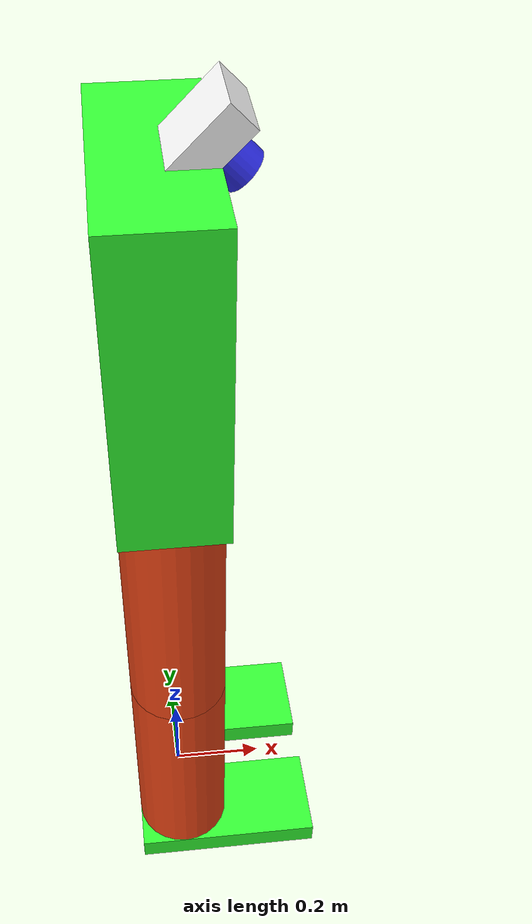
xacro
<?xml version="1.0"?>
<robot xmlns:xacro="http://www.ros.org/wiki/xacro"  name="robot">

    <!-- This is an example of a URDF. -->
    <!-- As we move through the file, new things to note will be pointed out. -->
    <!-- It's not meant an example of GOOD design, but an example of some of the various features of URDF/xacro. -->

    <!-- This will include all the contents of example_include.xacro first. Go check it out! -->
    <xacro:include filename="bipednav_include.xacro" />

    <!-- Define the body parameters -->
    <xacro:property name="body_height" value="0.6" />
    <xacro:property name="body_thickness" value="0.2" />
    <xacro:property name="body_width" value="0.5" />
    <xacro:property name="thigh_length" value="0.5" />
    <xacro:property name="calf_length" value="0.5" />
    <xacro:property name="leg_radius" value="0.1" />

    <!-- This first link called "world" is empty -->
    <link name="world"></link>

    <joint name="base_joint" type="fixed">
        <origin xyz="0 0 ${thigh_length + calf_length + body_height/2} " rpy="0 0 0"/>
        <parent link = "world"/>
        <child link = "base_link"/>
    </joint>

    <link name="base_link">
        <visual>
            <origin xyz="0 0 0" rpy="0 0 0"/>
            <geometry>
                <box size="0.2 0.5 0.6" />
            </geometry>
            <material name="green">
                <color rgba="0.2 1 0.2 1"/>
            </material>
        </visual>
        <collision>
            <origin xyz="0 0 0" rpy="0 0 0"/>
            <geometry>
                <box size="0.2 0.5 0.6" />
            </geometry>
        </collision>
        <inertial>
            <origin xyz="0 0 0" rpy="0 0 0"/>
            <mass value="12" />
            <inertia ixx="2.26" ixy="0.0" ixz="0.0" iyy="6.26" iyz="0.0" izz="8.5" />
        </inertial>
    </link>

    <joint name="toss_joint_1" type="revolute">
        <origin xyz="0 -0.15 ${-body_height/2}" rpy="0 0 0"/>
        <parent link = "base_link"/>
        <child link = "thigh_link_1"/>
        <axis xyz="0 -1 0"/>
        <limit lower="${-pi/3}" upper="${pi/2}" velocity="100" effort="100"/>
    </joint>

    <link name="thigh_link_1">
        <visual>
            <origin xyz="0 0 ${-thigh_length/2}" rpy="0 0 0"/>
            <geometry>
                <cylinder length="${thigh_length}" radius="${leg_radius}" />
            </geometry>
            <material name="orange" />
        </visual>
        <collision>
            <origin xyz="0 0 ${-thigh_length/2}" rpy="0 0 0"/>
            <geometry>
                <cylinder length="${thigh_length}" radius="${leg_radius}" />
            </geometry>
        </collision>
        <xacro:inertial_cylinder mass="1.0" length="${thigh_length}" radius="${leg_radius}">
            <origin xyz="0 0 ${-thigh_length/2}" rpy="0 0 0"/>
        </xacro:inertial_cylinder>
    </link>

    <joint name="toss_joint_2" type="revolute">
        <origin xyz="0 0.15 ${-body_height/2}" rpy="0 0 0"/>
        <parent link = "base_link"/>
        <child link = "thigh_link_2"/>
        <axis xyz="0 -1 0"/>
        <limit lower="${-pi/3}" upper="${pi/2}" velocity="100" effort="100"/>
    </joint>

    <link name="thigh_link_2">
        <visual>
            <origin xyz="0 0 ${-thigh_length/2}" rpy="0 0 0"/>
            <geometry>
                <cylinder length="${thigh_length}" radius="${leg_radius}" />
            </geometry>
            <material name="orange" />
        </visual>
        <collision>
            <origin xyz="0 0 ${-thigh_length/2}" rpy="0 0 0"/>
            <geometry>
                <cylinder length="${thigh_length}" radius="${leg_radius}" />
            </geometry>
        </collision>
        <xacro:inertial_cylinder mass="1.0" length="${thigh_length}" radius="${leg_radius}">
            <origin xyz="0 0 ${-thigh_length/2}" rpy="0 0 0"/>
        </xacro:inertial_cylinder>
    </link>

    <joint name="knee_joint_1" type="revolute">
        <origin xyz="0 0 ${-thigh_length}" rpy="0 0 0"/>
        <parent link = "thigh_link_1"/>
        <child link = "calf_link_1"/>
        <axis xyz="0 -1 0"/>
        <limit lower="${-pi/2}" upper="0" velocity="100" effort="100"/>
    </joint>

    <link name="calf_link_1">
        <visual>
            <origin xyz="0 0 ${-calf_length/2}" rpy="0 0 0"/>
            <geometry>
                <cylinder length="${calf_length}" radius="${leg_radius}" />
            </geometry>
            <material name="orange" />
        </visual>
        <collision>
            <origin xyz="0 0 ${-calf_length/2}" rpy="0 0 0"/>
            <geometry>
                <cylinder length="${calf_length}" radius="${leg_radius}" />
            </geometry>
        </collision>
        <xacro:inertial_cylinder mass="1.0" length="${calf_length}" radius="${leg_radius}">
            <origin xyz="0 0 ${-calf_length/2}" rpy="0 0 0"/>
        </xacro:inertial_cylinder>
    </link>

    <joint name="knee_joint_2" type="revolute">
        <origin xyz="0 0 ${-calf_length}" rpy="0 0 0"/>
        <parent link = "thigh_link_2"/>
        <child link = "calf_link_2"/>
        <axis xyz="0 -1 0"/>
        <limit lower="${-pi/2}" upper="0" velocity="100" effort="100"/>
    </joint>

    <link name="calf_link_2">
        <visual>
            <origin xyz="0 0 ${-calf_length/2}" rpy="0 0 0"/>
            <geometry>
                <cylinder length="${calf_length}" radius="${leg_radius}" />
            </geometry>
            <material name="orange" />
        </visual>
        <collision>
            <origin xyz="0 0 ${-calf_length/2}" rpy="0 0 0"/>
            <geometry>
                <cylinder length="${calf_length}" radius="${leg_radius}" />
            </geometry>
        </collision>
        <xacro:inertial_cylinder mass="1.0" length="${calf_length}" radius="${leg_radius}">
            <origin xyz="0 0 ${-calf_length/2}" rpy="0 0 0"/>
        </xacro:inertial_cylinder>
    </link>

    <joint name="ankle_joint_1" type="fixed">
        <origin xyz="0 0 ${-calf_length}" rpy="0 0 0"/>
        <parent link = "calf_link_1"/>
        <child link = "foot_link_1"/>
    </joint>

    <link name="foot_link_1">
        <visual>
            <origin xyz="0.1 0 0" rpy="0 0 0"/>
            <geometry>
                <box size="0.4 0.2 0.05" />
            </geometry>
            <material name="green">
                <color rgba="0.2 1 0.2 1"/>
            </material>
        </visual>
        <collision>
            <origin xyz="0.1 0 0" rpy="0 0 0"/>
            <geometry>
                <box size="0.4 0.2 0.05" />
            </geometry>
        </collision>
        <inertial>
            <origin xyz="0.1 0 0" rpy="0 0 0"/>
            <mass value="12" />
            <inertia ixx="2.26" ixy="0.0" ixz="0.0" iyy="6.26" iyz="0.0" izz="8.5" />
        </inertial>
    </link>

    <joint name="ankle_joint_2" type="fixed">
        <origin xyz="0 0 ${-calf_length}" rpy="0 0 0"/>
        <parent link = "calf_link_2"/>
        <child link = "foot_link_2"/>
    </joint>

    <link name="foot_link_2">
        <visual>
            <origin xyz="0.1 0 0" rpy="0 0 0"/>
            <geometry>
                <box size="0.4 0.2 0.05" />
            </geometry>
            <material name="green">
                <color rgba="0.2 1 0.2 1"/>
            </material>
        </visual>
        <collision>
            <origin xyz="0.1 0 0" rpy="0 0 0"/>
            <geometry>
                <box size="0.4 0.2 0.05" />
            </geometry>
        </collision>
        <inertial>
            <origin xyz="0.1 0 0" rpy="0 0 0"/>
            <mass value="12" />
            <inertia ixx="2.26" ixy="0.0" ixz="0.0" iyy="6.26" iyz="0.0" izz="8.5" />
        </inertial>
    </link>

    <!-- camera_joint describes where the camera is relative to the arm -->
    <!-- - Even though the camera isn't moving relative to the arm, it will probably be helpful to have its own link/frame rather than just adding more visuals to the arm -->
    <!-- - For this example, the camera_link origin will be at the centre of the camera's "sensor" -->
    <joint name="camera_joint" type="fixed">
        <origin xyz="${body_thickness/2} 0 ${body_height/2}" rpy="0 ${pi/4} 0"/>
        <parent link="base_link"/>
        <child link="camera_link"/>
    </joint>

    <!-- camera_link describes the camera at the end of the arm -->
    <!-- - It has multiple visual elements, which ultimately get combined together -->
    <!-- - Even if we specify different materials, RViz will just colour them all the same as the first -->
    <!-- - Although we could also specify multiple collision geometries, instead we just use a single box that encompasses the whole camera -->
    <link name="camera_link">
        <visual>
            <origin xyz="-0.03 0 0" rpy="0 0 0"/>
            <geometry>
                <box size="0.06 0.15 0.15" />
            </geometry>
            <material name="white" />
        </visual>
        <visual>
            <origin xyz="0.03 0 0" rpy="0 ${pi/2} 0"/>
            <geometry>
                <cylinder length="0.06" radius="0.04" />
            </geometry>
            <material name="blue" />
        </visual>
        <collision>
            <origin xyz="0.0 0 0" rpy="0 0 0"/>
            <geometry>
                <box size="0.12 0.15 0.15" />
            </geometry>
        </collision>
        <xacro:inertial_box mass="0.1" x="0.12" y="0.15" z="0.15">
            <origin xyz="0.0 0 0" rpy="0 0 0"/>
        </xacro:inertial_box>
    </link>

    <xacro:include filename="bipednav_gazebo.xacro" />

</robot>

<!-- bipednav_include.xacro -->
<robot xmlns:xacro="http://www.ros.org/wiki/xacro" >

    <!-- This file is not a robot in and of itself, it just contains some useful tags that could be included in any robot -->

    <!-- Specify some colours -->

    <material name="white">
        <color rgba="1 1 1 1"/>
    </material>

    <material name="orange">
        <color rgba="1 0.3 0.1 1"/>
    </material>

    <material name="blue">
        <color rgba="0.2 0.2 1 1"/>
    </material>

    <!-- Specify some standard inertial calculations https://en.wikipedia.org/wiki/List_of_moments_of_inertia -->
    <!-- These make use of xacro's mathematical functionality -->

    <xacro:macro name="inertial_sphere" params="mass radius *origin">
        <inertial>
            <xacro:insert_block name="origin"/>
            <mass value="${mass}" />
            <inertia ixx="${(2/5) * mass * (radius*radius)}" ixy="0.0" ixz="0.0"
                    iyy="${(2/5) * mass * (radius*radius)}" iyz="0.0"
                    izz="${(2/5) * mass * (radius*radius)}" />
        </inertial>
    </xacro:macro>

    <xacro:macro name="inertial_sphere" params="mass radius *origin">
        <inertial>
            <xacro:insert_block name="origin"/>
            <mass value="${mass}" />
            <inertia ixx="${(2/5) * mass * (radius*radius)}" ixy="0.0" ixz="0.0"
                    iyy="${(2/5) * mass * (radius*radius)}" iyz="0.0"
                    izz="${(2/5) * mass * (radius*radius)}" />
        </inertial>
    </xacro:macro>

    <xacro:macro name="inertial_box" params="mass x y z *origin">
        <inertial>
            <xacro:insert_block name="origin"/>
            <mass value="${mass}" />
            <inertia ixx="${(1/12) * mass * (y*y+z*z)}" ixy="0.0" ixz="0.0"
                    iyy="${(1/12) * mass * (x*x+z*z)}" iyz="0.0"
                    izz="${(1/12) * mass * (x*x+y*y)}" />
        </inertial>
    </xacro:macro>

    <xacro:macro name="inertial_cylinder" params="mass length radius *origin">
        <inertial>
            <xacro:insert_block name="origin"/>
            <mass value="${mass}" />
            <inertia ixx="${(1/12) * mass * (3*radius*radius + length*length)}" ixy="0.0" ixz="0.0"
                    iyy="${(1/12) * mass * (3*radius*radius + length*length)}" iyz="0.0"
                    izz="${(1/2) * mass * (radius*radius)}" />
        </inertial>
    </xacro:macro>

</robot>

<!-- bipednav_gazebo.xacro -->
<robot xmlns:xacro="http://www.ros.org/wiki/xacro">

    <!-- To include it add the following line -->

    <!-- Instead, we need to add gazebo tags for our links that refer to Gazebo materials -->

    <gazebo reference="base_link">
        <material>Gazebo/Green</material>
    </gazebo>

    <!-- Gazebo requires the use of plugins to interact with other systems such as ROS. -->

    <!-- This plugin will publish the joint_states for the selected joints
            (which robot_state_publisher can then use to broadcast the approprate tf). -->

    <gazebo>
        <plugin name="gazebo_ros_joint_state_publisher"
            filename="libgazebo_ros_joint_state_publisher.so">
            <update_rate>20</update_rate>
            <joint_name>toss_joint_1</joint_name>
            <joint_name>toss_joint_2</joint_name>
            <joint_name>knee_joint_1</joint_name>
            <joint_name>knee_joint_2</joint_name>
            <joint_name>ankle_joint_1</joint_name>
            <joint_name>ankle_joint_2</joint_name>
        </plugin>
    </gazebo>

    <!-- This plugin will read a JointTrajectory message from the /set_joint_trajectory topic
            and move the machine accordingly. It's a bit clunky but it works. -->

    <gazebo>
        <plugin name="gazebo_ros_joint_pose_trajectory"
            filename="libgazebo_ros_joint_pose_trajectory.so">
            <update_rate>2</update_rate>
        </plugin>
    </gazebo>

    <joint name="camera_optical_joint" type="fixed">
        <origin xyz="0 0 0" rpy="-1.571 0 -1.571" />
        <parent link="camera_link" />
        <child link="camera_link_optical" />
    </joint>

    <link name="camera_link_optical"></link>

    <!-- Add a gazebo tag for the ORIGINAL camera_link (but in the plugin we reference the optical frame so that ROS can orient things correctly) -->
    <!-- Note that although visualise is set to true, it won't actually visualise the depth camera in gazebo. To see the preview,
            try swapping "depth" to "camera"-->
    <gazebo reference="camera_link">
        <sensor type="depth" name="my_camera">
            <update_rate>20</update_rate>
            <visualize>true</visualize>
            <camera name="cam">
                <horizontal_fov>1.3962634</horizontal_fov>
                <image>
                    <width>640</width>
                    <height>480</height>
                    <format>R8B8G8</format>
                </image>
                <clip>
                    <near>0.02</near>
                    <far>300</far>
                </clip>
                <noise>
                    <type>gaussian</type>
                    <mean>0.0</mean>
                    <stddev>0.007</stddev>
                </noise>
            </camera>
            <plugin name="camera_controller" filename="libgazebo_ros_camera.so">
                <frame_name>camera_link_optical</frame_name>
                <min_depth>0.1</min_depth>
                <max_depth>500</max_depth>
            </plugin>
        </sensor>
    </gazebo>

</robot>
